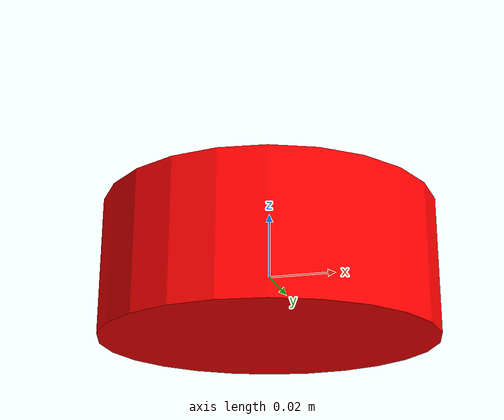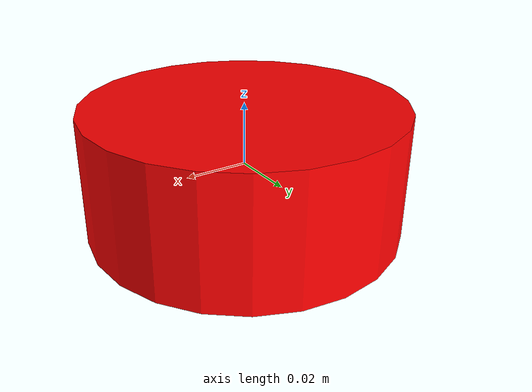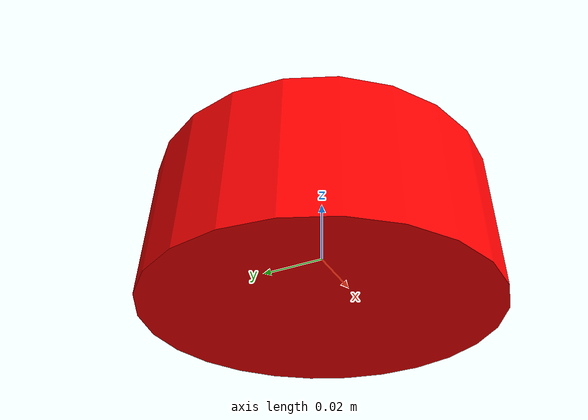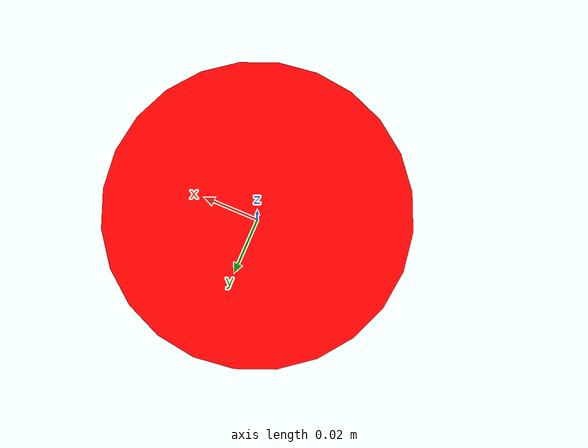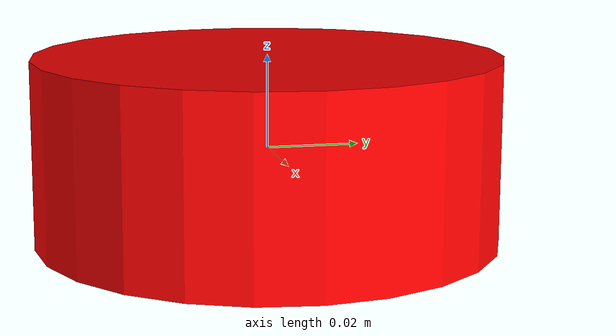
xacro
<?xml version="1.0"?>
<robot xmlns:xacro="http://www.ros.org/wiki/xacro">

  <!-- Inertial Macros -->
  <xacro:macro name="inertial_sphere" params="mass radius *origin">
    <inertial>
      <xacro:insert_block name="origin"/>
      <mass value="${mass}" />
      <inertia ixx="${(2/5) * mass * (radius*radius)}" ixy="0.0" ixz="0.0"
              iyy="${(2/5) * mass * (radius*radius)}" iyz="0.0"
              izz="${(2/5) * mass * (radius*radius)}" />
    </inertial>
  </xacro:macro>

  <xacro:macro name="inertial_box" params="mass x y z *origin">
    <inertial>
      <xacro:insert_block name="origin"/>
      <mass value="${mass}" />
      <inertia ixx="${(1/12) * mass * (y*y+z*z)}" ixy="0.0" ixz="0.0"
              iyy="${(1/12) * mass * (x*x+z*z)}" iyz="0.0"
              izz="${(1/12) * mass * (x*x+y*y)}" />
    </inertial>
  </xacro:macro>

  <xacro:macro name="inertial_cylinder" params="mass length radius *origin">
    <inertial>
      <xacro:insert_block name="origin"/>
      <mass value="${mass}" />
      <inertia ixx="${(1/12) * mass * (3*radius*radius + length*length)}" ixy="0.0" ixz="0.0"
              iyy="${(1/12) * mass * (3*radius*radius + length*length)}" iyz="0.0"
              izz="${(1/2) * mass * (radius*radius)}" />
    </inertial>
  </xacro:macro>

  <!-- Materials -->
  <material name="white">
    <color rgba="1 1 1 1" />
  </material>
  <material name="orange">
    <color rgba="1 0.3 0.1 1"/>
  </material>
  <material name="blue">
    <color rgba="0.2 0.2 1 1"/>
  </material>
  <material name="red">
    <color rgba="1 0 0 1"/>
  </material>

  <!-- Lidar Joint + Link -->
  <link name="lidar_link">
    <visual>
      <geometry>
        <cylinder radius="0.05" length="0.04"/>
      </geometry>
      <material name="red"/>
    </visual>
    <collision>
      <geometry>
        <cylinder radius="0.05" length="0.04"/>
      </geometry>
    </collision>
    <xacro:inertial_cylinder mass="0.1" length="0.04" radius="0.05">
      <origin xyz="0 0 0" rpy="0 0 0"/>
    </xacro:inertial_cylinder>
  </link>

  <!-- Gazebo Sensor -->
  <gazebo reference="lidar_link">
    <material>Gazebo/Red</material>

    <sensor type="ray" name="lidar">
      <pose>0 0 0 0 0 0</pose>
      <visualize>false</visualize>
      <update_rate>10</update_rate>
      <ray>
        <scan>
          <horizontal>
            <samples>360</samples>
            <resolution>1</resolution>
            <min_angle>-3.1415</min_angle>
            <max_angle>3.1415</max_angle>
          </horizontal>
          <vertical>
            <samples>16</samples> <!-- Number of vertical slices (like a small 3D LiDAR) -->
            <resolution>1</resolution>
            <min_angle>-0.26</min_angle> <!-- Approx. -15 degrees -->
            <max_angle>0.26</max_angle>  <!-- Approx. +15 degrees -->
          </vertical>
        </scan>
        <range>
          <min>0.10</min>
          <max>8.0</max>
        </range>
        <noise>
          <type>gaussian</type>
          <mean>0.0</mean>
          <stddev>0.01</stddev>
        </noise>
      </ray>
      <plugin name="gazebo_ros_point_cloud" filename="libgazebo_ros_point_cloud.so">
        <topicName>/point_cloud</topicName>
        <frameName>lidar_link</frameName>
        <min_range>0.10</min_range>
        <max_range>8.0</max_range>
        <gaussianNoise>0.01</gaussianNoise>
      </plugin>
    </sensor>
  </gazebo>

</robot>
